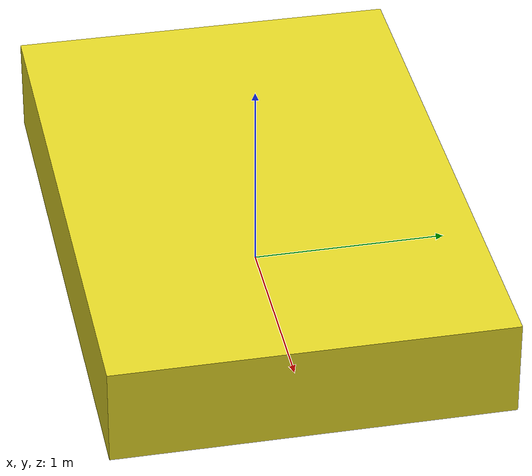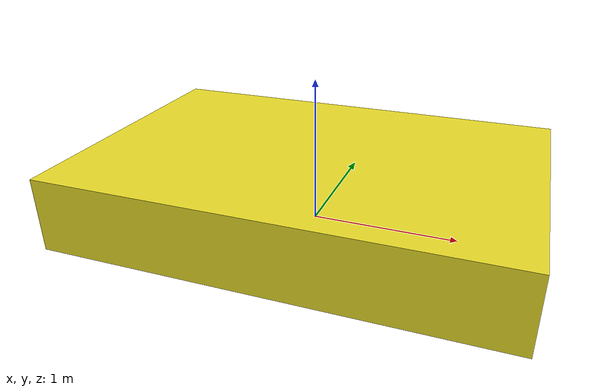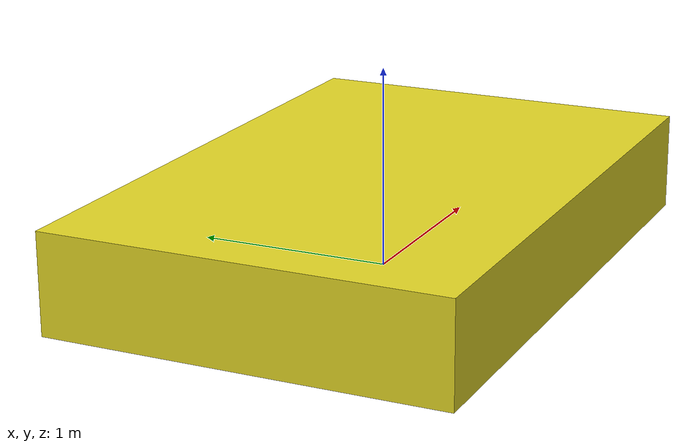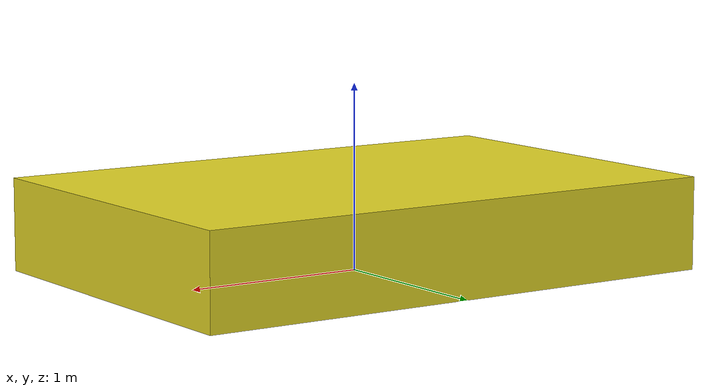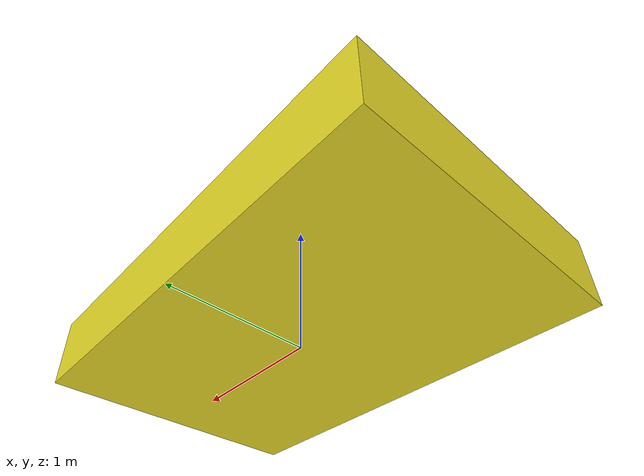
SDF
<?xml version="1.0" ?>
<sdf version="1.6">
  <model name="plant_chrysanthemum">
    <static>true</static>
    <link name="link">
      <pose>0 0 0.25 0 0 0</pose>
      <collision name="collision">
        <geometry>
          <box>
            <size>3 2 0.5</size>
          </box>
        </geometry>
      </collision>
      <visual name="visual">
        <geometry>
          <box>
            <size>3 2 0.5</size>
          </box>
        </geometry>
        <material>
          <script>
            <uri>file://media/materials/scripts/gazebo.material</uri>
            <name>Gazebo/Yellow</name>
          </script>
        </material>
      </visual>
    </link>
  </model>
</sdf>
